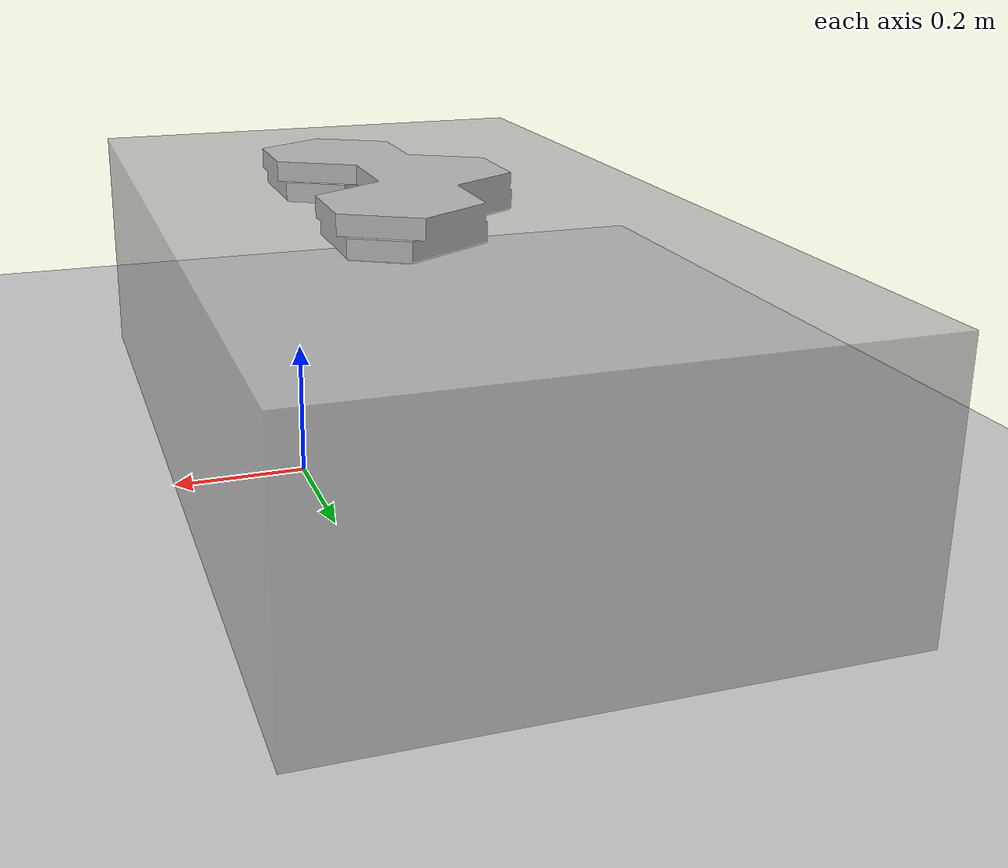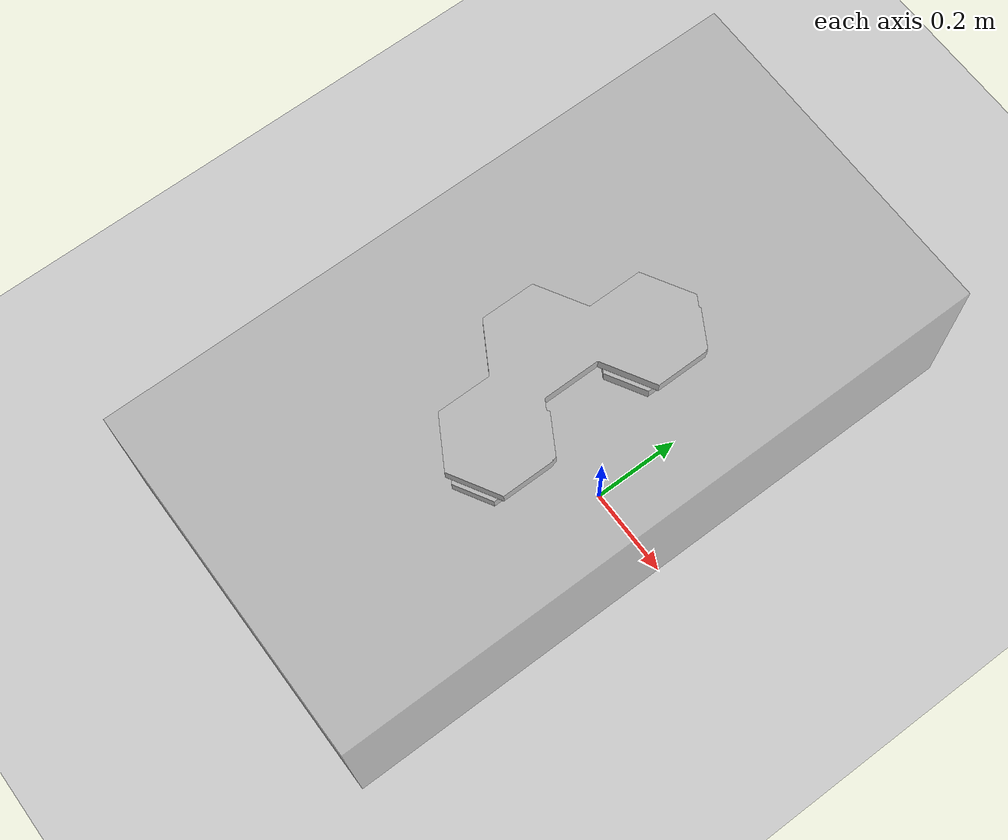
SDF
<?xml version="1.0" ?>
<sdf version="1.6">
  <world name="tile_env">
    <!--A global light source-->
    <include>
      <uri>model://sun</uri>
    </include>
    <!--A ground plane-->
    <include>
      <uri>model://ground_plane</uri>
    </include>
    <!-- A Table -->
    <include>
      <uri>model://table_tile_env</uri>
      <pose>-0.2 0.0 0.2 0 -0 0</pose>
      <static>1</static>
    </include>
    <!--A Passive Tile-->
    <include>
      <uri>model://passive_tile</uri>
      <pose>0.0 0.0 0.4 0 0 -1.57079632679</pose>
      <static>1</static>
    </include>
  </world>
</sdf>

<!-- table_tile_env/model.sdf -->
<sdf version='1.6'>
  <model name='table_tile_env'>
    <link name='link'>
      <visual name='visual'>
        <geometry>
          <box>
            <size>0.8 1.5 0.4</size>
          </box>
        </geometry>
        <transparency>0.3</transparency>
      </visual>
      <collision name='collision'>
        <geometry>
          <box>
            <size>0.8 1.5 0.4</size>
          </box>
        </geometry>
        <surface>
          <ode>
            <mu>0.4</mu>
            <mu2>0.4</mu2>
            <slip1>1000000</slip1>
            <slip2>1000000</slip2>
          </ode>
          <torsional>
            <coefficient>0</coefficient>
          </torsional>
        </surface>
      </collision>
    </link>
    <static>1</static>
  </model>
</sdf>

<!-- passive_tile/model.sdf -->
<sdf version='1.6'>
  <model name='passive_tile'>
    <link name='link'>
      <visual name='visual_bot'>
        <pose>0 0 0 0 0 0</pose>
        <geometry>
          <mesh><uri>model://passive_tile/meshes/visual/assembled_interlocking_tiles.obj</uri></mesh>
        </geometry>
      </visual>
      <collision name='collision_bot'>
        <pose>0 0 0 0 0 0</pose>
        <geometry>
          <mesh><uri>model://passive_tile/meshes/collision/assembled_interlocking_tile_bot.obj</uri></mesh>
        </geometry>
        <surface>
          <ode>
            <mu>0.4</mu>
            <mu2>0.4</mu2>
            <slip1>1000000</slip1>
            <slip2>1000000</slip2>
          </ode>
          <torsional>
            <coefficient>0</coefficient>
          </torsional>
        </surface>
      </collision>
      <collision name='collision_top'>
        <pose>0 0 0.031 0 0 0</pose>
        <geometry>
          <mesh><uri>model://passive_tile/meshes/collision/assembled_interlocking_tile_top.obj</uri></mesh>
        </geometry>
        <surface>
          <ode>
            <mu>0.4</mu>
            <mu2>0.4</mu2>
            <slip1>1000000</slip1>
            <slip2>1000000</slip2>
          </ode>
          <torsional>
            <coefficient>0</coefficient>
          </torsional>
        </surface>
      </collision>
    </link>

    <static>1</static>
  </model>
</sdf>
